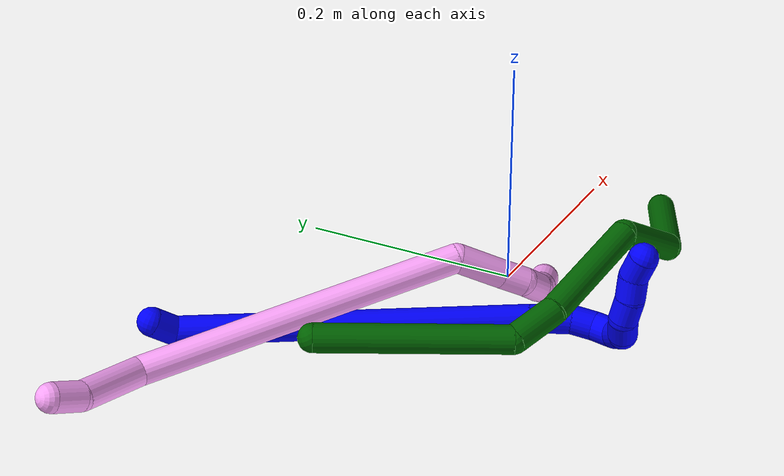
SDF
<sdf version="1.7">
 <world name="default">
  <model name="1">
   <static>0</static>
   <link name="1">
    <collision name="collision-cylinder-e_1_1_4">
     <pose>-0.000129 -0.011569 0.001819 1.41482 -0.011016 -0.009419</pose>
     <geometry><cylinder><radius>0.0125</radius><length>0.023423</length></cylinder></geometry>
     <surface>
      <friction><ode><mu>1.16</mu><mu2>1.16</mu2><slip1>0</slip1><slip2>0</slip2></ode></friction>
      <contact><ode><kp>1e+06</kp><kd>1</kd><max_vel>0</max_vel><min_depth>0.001</min_depth></ode></contact>
     </surface>
    </collision>
    <visual name="visual-cylinder-e_1_1_4">
     <pose>-0.000129 -0.011569 0.001819 1.41482 -0.011016 -0.009419</pose>
     <geometry><cylinder><radius>0.0125</radius><length>0.023423</length></cylinder></geometry>
     <material><ambient>0 0 1 1</ambient></material>
    </visual>
    <collision name="collision-cylinder-e_2_4_5">
     <pose>0.060893 -0.14702 -0.052724 1.99777 0.422276 0.642876</pose>
     <geometry><cylinder><radius>0.0125</radius><length>0.298415</length></cylinder></geometry>
     <surface>
      <friction><ode><mu>1.16</mu><mu2>1.16</mu2><slip1>0</slip1><slip2>0</slip2></ode></friction>
      <contact><ode><kp>1e+06</kp><kd>1</kd><max_vel>0</max_vel><min_depth>0.001</min_depth></ode></contact>
     </surface>
    </collision>
    <visual name="visual-cylinder-e_2_4_5">
     <pose>0.060893 -0.14702 -0.052724 1.99777 0.422276 0.642876</pose>
     <geometry><cylinder><radius>0.0125</radius><length>0.298415</length></cylinder></geometry>
     <material><ambient>0 0 1 1</ambient></material>
    </visual>
    <collision name="collision-cylinder-e_3_5_6">
     <pose>0.13036 -0.28511 -0.115248 1.98001 0.49282 0.731952</pose>
     <geometry><cylinder><radius>0.0125</radius><length>0.035156</length></cylinder></geometry>
     <surface>
      <friction><ode><mu>1.16</mu><mu2>1.16</mu2><slip1>0</slip1><slip2>0</slip2></ode></friction>
      <contact><ode><kp>1e+06</kp><kd>1</kd><max_vel>0</max_vel><min_depth>0.001</min_depth></ode></contact>
     </surface>
    </collision>
    <visual name="visual-cylinder-e_3_5_6">
     <pose>0.13036 -0.28511 -0.115248 1.98001 0.49282 0.731952</pose>
     <geometry><cylinder><radius>0.0125</radius><length>0.035156</length></cylinder></geometry>
     <material><ambient>0 0 1 1</ambient></material>
    </visual>
    <collision name="collision-cylinder-e_4_6_7">
     <pose>0.145175 -0.307591 -0.122555 1.7084 0.661197 0.750634</pose>
     <geometry><cylinder><radius>0.0125</radius><length>0.021166</length></cylinder></geometry>
     <surface>
      <friction><ode><mu>1.16</mu><mu2>1.16</mu2><slip1>0</slip1><slip2>0</slip2></ode></friction>
      <contact><ode><kp>1e+06</kp><kd>1</kd><max_vel>0</max_vel><min_depth>0.001</min_depth></ode></contact>
     </surface>
    </collision>
    <visual name="visual-cylinder-e_4_6_7">
     <pose>0.145175 -0.307591 -0.122555 1.7084 0.661197 0.750634</pose>
     <geometry><cylinder><radius>0.0125</radius><length>0.021166</length></cylinder></geometry>
     <material><ambient>0 0 1 1</ambient></material>
    </visual>
    <collision name="collision-cylinder-e_5_7_8">
     <pose>0.161134 -0.319378 -0.124914 1.90321 1.19645 1.52611</pose>
     <geometry><cylinder><radius>0.0125</radius><length>0.020328</length></cylinder></geometry>
     <surface>
      <friction><ode><mu>1.16</mu><mu2>1.16</mu2><slip1>0</slip1><slip2>0</slip2></ode></friction>
      <contact><ode><kp>1e+06</kp><kd>1</kd><max_vel>0</max_vel><min_depth>0.001</min_depth></ode></contact>
     </surface>
    </collision>
    <visual name="visual-cylinder-e_5_7_8">
     <pose>0.161134 -0.319378 -0.124914 1.90321 1.19645 1.52611</pose>
     <geometry><cylinder><radius>0.0125</radius><length>0.020328</length></cylinder></geometry>
     <material><ambient>0 0 1 1</ambient></material>
    </visual>
    <collision name="collision-cylinder-e_6_8_9">
     <pose>0.180108 -0.318916 -0.129129 -2.21772 1.08843 -1.76476</pose>
     <geometry><cylinder><radius>0.0125</radius><length>0.021479</length></cylinder></geometry>
     <surface>
      <friction><ode><mu>1.16</mu><mu2>1.16</mu2><slip1>0</slip1><slip2>0</slip2></ode></friction>
      <contact><ode><kp>1e+06</kp><kd>1</kd><max_vel>0</max_vel><min_depth>0.001</min_depth></ode></contact>
     </surface>
    </collision>
    <visual name="visual-cylinder-e_6_8_9">
     <pose>0.180108 -0.318916 -0.129129 -2.21772 1.08843 -1.76476</pose>
     <geometry><cylinder><radius>0.0125</radius><length>0.021479</length></cylinder></geometry>
     <material><ambient>0 0 1 1</ambient></material>
    </visual>
    <collision name="collision-cylinder-e_7_9_10">
     <pose>0.193299 -0.309052 -0.139332 -2.45613 0.376378 -0.980528</pose>
     <geometry><cylinder><radius>0.0125</radius><length>0.020004</length></cylinder></geometry>
     <surface>
      <friction><ode><mu>1.16</mu><mu2>1.16</mu2><slip1>0</slip1><slip2>0</slip2></ode></friction>
      <contact><ode><kp>1e+06</kp><kd>1</kd><max_vel>0</max_vel><min_depth>0.001</min_depth></ode></contact>
     </surface>
    </collision>
    <visual name="visual-cylinder-e_7_9_10">
     <pose>0.193299 -0.309052 -0.139332 -2.45613 0.376378 -0.980528</pose>
     <geometry><cylinder><radius>0.0125</radius><length>0.020004</length></cylinder></geometry>
     <material><ambient>0 0 1 1</ambient></material>
    </visual>
    <collision name="collision-cylinder-e_8_10_11">
     <pose>0.199154 -0.300576 -0.155949 -2.87331 0.219604 -1.36994</pose>
     <geometry><cylinder><radius>0.0125</radius><length>0.020011</length></cylinder></geometry>
     <surface>
      <friction><ode><mu>1.16</mu><mu2>1.16</mu2><slip1>0</slip1><slip2>0</slip2></ode></friction>
      <contact><ode><kp>1e+06</kp><kd>1</kd><max_vel>0</max_vel><min_depth>0.001</min_depth></ode></contact>
     </surface>
    </collision>
    <visual name="visual-cylinder-e_8_10_11">
     <pose>0.199154 -0.300576 -0.155949 -2.87331 0.219604 -1.36994</pose>
     <geometry><cylinder><radius>0.0125</radius><length>0.020011</length></cylinder></geometry>
     <material><ambient>0 0 1 1</ambient></material>
    </visual>
    <collision name="collision-cylinder-e_9_11_12">
     <pose>0.201592 -0.294851 -0.17486 -2.82259 0.025782 -0.159933</pose>
     <geometry><cylinder><radius>0.0125</radius><length>0.020006</length></cylinder></geometry>
     <surface>
      <friction><ode><mu>1.16</mu><mu2>1.16</mu2><slip1>0</slip1><slip2>0</slip2></ode></friction>
      <contact><ode><kp>1e+06</kp><kd>1</kd><max_vel>0</max_vel><min_depth>0.001</min_depth></ode></contact>
     </surface>
    </collision>
    <visual name="visual-cylinder-e_9_11_12">
     <pose>0.201592 -0.294851 -0.17486 -2.82259 0.025782 -0.159933</pose>
     <geometry><cylinder><radius>0.0125</radius><length>0.020006</length></cylinder></geometry>
     <material><ambient>0 0 1 1</ambient></material>
    </visual>
    <collision name="collision-cylinder-e_10_12_2">
     <pose>0.205515 -0.289786 -0.193463 -2.93287 0.375018 -2.1328</pose>
     <geometry><cylinder><radius>0.0125</radius><length>0.020012</length></cylinder></geometry>
     <surface>
      <friction><ode><mu>1.16</mu><mu2>1.16</mu2><slip1>0</slip1><slip2>0</slip2></ode></friction>
      <contact><ode><kp>1e+06</kp><kd>1</kd><max_vel>0</max_vel><min_depth>0.001</min_depth></ode></contact>
     </surface>
    </collision>
    <visual name="visual-cylinder-e_10_12_2">
     <pose>0.205515 -0.289786 -0.193463 -2.93287 0.375018 -2.1328</pose>
     <geometry><cylinder><radius>0.0125</radius><length>0.020012</length></cylinder></geometry>
     <material><ambient>0 0 1 1</ambient></material>
    </visual>
    <collision name="collision-sphere-2">
     <pose>0.20918 -0.287856 -0.202572 0 -0 0</pose>
     <geometry><sphere><radius>0.0125</radius></sphere></geometry>
     <surface>
      <friction><ode><mu>1.16</mu><mu2>1.16</mu2><slip1>0</slip1><slip2>0</slip2></ode></friction>
      <contact><ode><kp>1e+06</kp><kd>1</kd><max_vel>0</max_vel><min_depth>0.001</min_depth></ode></contact>
     </surface>
    </collision>
    <visual name="visual-sphere-2">
     <pose>0.20918 -0.287856 -0.202572 0 -0 0</pose>
     <geometry><sphere><radius>0.0125</radius></sphere></geometry>
     <material><ambient>0 0 1 1</ambient></material>
    </visual>
    <collision name="collision-sphere-12">
     <pose>0.20185 -0.291715 -0.184355 0 -0 0</pose>
     <geometry><sphere><radius>0.0125</radius></sphere></geometry>
     <surface>
      <friction><ode><mu>1.16</mu><mu2>1.16</mu2><slip1>0</slip1><slip2>0</slip2></ode></friction>
      <contact><ode><kp>1e+06</kp><kd>1</kd><max_vel>0</max_vel><min_depth>0.001</min_depth></ode></contact>
     </surface>
    </collision>
    <visual name="visual-sphere-12">
     <pose>0.20185 -0.291715 -0.184355 0 -0 0</pose>
     <geometry><sphere><radius>0.0125</radius></sphere></geometry>
     <material><ambient>0 0 1 1</ambient></material>
    </visual>
    <collision name="collision-sphere-11">
     <pose>0.201334 -0.297987 -0.165365 0 -0 0</pose>
     <geometry><sphere><radius>0.0125</radius></sphere></geometry>
     <surface>
      <friction><ode><mu>1.16</mu><mu2>1.16</mu2><slip1>0</slip1><slip2>0</slip2></ode></friction>
      <contact><ode><kp>1e+06</kp><kd>1</kd><max_vel>0</max_vel><min_depth>0.001</min_depth></ode></contact>
     </surface>
    </collision>
    <visual name="visual-sphere-11">
     <pose>0.201334 -0.297987 -0.165365 0 -0 0</pose>
     <geometry><sphere><radius>0.0125</radius></sphere></geometry>
     <material><ambient>0 0 1 1</ambient></material>
    </visual>
    <collision name="collision-sphere-10">
     <pose>0.196975 -0.303164 -0.146533 0 -0 0</pose>
     <geometry><sphere><radius>0.0125</radius></sphere></geometry>
     <surface>
      <friction><ode><mu>1.16</mu><mu2>1.16</mu2><slip1>0</slip1><slip2>0</slip2></ode></friction>
      <contact><ode><kp>1e+06</kp><kd>1</kd><max_vel>0</max_vel><min_depth>0.001</min_depth></ode></contact>
     </surface>
    </collision>
    <visual name="visual-sphere-10">
     <pose>0.196975 -0.303164 -0.146533 0 -0 0</pose>
     <geometry><sphere><radius>0.0125</radius></sphere></geometry>
     <material><ambient>0 0 1 1</ambient></material>
    </visual>
    <collision name="collision-sphere-9">
     <pose>0.189622 -0.314941 -0.132132 0 -0 0</pose>
     <geometry><sphere><radius>0.0125</radius></sphere></geometry>
     <surface>
      <friction><ode><mu>1.16</mu><mu2>1.16</mu2><slip1>0</slip1><slip2>0</slip2></ode></friction>
      <contact><ode><kp>1e+06</kp><kd>1</kd><max_vel>0</max_vel><min_depth>0.001</min_depth></ode></contact>
     </surface>
    </collision>
    <visual name="visual-sphere-9">
     <pose>0.189622 -0.314941 -0.132132 0 -0 0</pose>
     <geometry><sphere><radius>0.0125</radius></sphere></geometry>
     <material><ambient>0 0 1 1</ambient></material>
    </visual>
    <collision name="collision-sphere-4">
     <pose>-0.000258 -0.023137 0.003639 0 -0 0</pose>
     <geometry><sphere><radius>0.0125</radius></sphere></geometry>
     <surface>
      <friction><ode><mu>1.16</mu><mu2>1.16</mu2><slip1>0</slip1><slip2>0</slip2></ode></friction>
      <contact><ode><kp>1e+06</kp><kd>1</kd><max_vel>0</max_vel><min_depth>0.001</min_depth></ode></contact>
     </surface>
    </collision>
    <visual name="visual-sphere-4">
     <pose>-0.000258 -0.023137 0.003639 0 -0 0</pose>
     <geometry><sphere><radius>0.0125</radius></sphere></geometry>
     <material><ambient>0 0 1 1</ambient></material>
    </visual>
    <collision name="collision-sphere-1">
     <geometry><sphere><radius>0.0125</radius></sphere></geometry>
     <surface>
      <friction><ode><mu>1.16</mu><mu2>1.16</mu2><slip1>0</slip1><slip2>0</slip2></ode></friction>
      <contact><ode><kp>1e+06</kp><kd>1</kd><max_vel>0</max_vel><min_depth>0.001</min_depth></ode></contact>
     </surface>
    </collision>
    <visual name="visual-sphere-1">
     <geometry><sphere><radius>0.0125</radius></sphere></geometry>
     <material><ambient>0 0 1 1</ambient></material>
    </visual>
    <collision name="collision-sphere-8">
     <pose>0.170594 -0.322891 -0.126126 0 -0 0</pose>
     <geometry><sphere><radius>0.0125</radius></sphere></geometry>
     <surface>
      <friction><ode><mu>1.16</mu><mu2>1.16</mu2><slip1>0</slip1><slip2>0</slip2></ode></friction>
      <contact><ode><kp>1e+06</kp><kd>1</kd><max_vel>0</max_vel><min_depth>0.001</min_depth></ode></contact>
     </surface>
    </collision>
    <visual name="visual-sphere-8">
     <pose>0.170594 -0.322891 -0.126126 0 -0 0</pose>
     <geometry><sphere><radius>0.0125</radius></sphere></geometry>
     <material><ambient>0 0 1 1</ambient></material>
    </visual>
    <collision name="collision-sphere-5">
     <pose>0.122044 -0.270902 -0.109086 0 -0 0</pose>
     <geometry><sphere><radius>0.0125</radius></sphere></geometry>
     <surface>
      <friction><ode><mu>1.16</mu><mu2>1.16</mu2><slip1>0</slip1><slip2>0</slip2></ode></friction>
      <contact><ode><kp>1e+06</kp><kd>1</kd><max_vel>0</max_vel><min_depth>0.001</min_depth></ode></contact>
     </surface>
    </collision>
    <visual name="visual-sphere-5">
     <pose>0.122044 -0.270902 -0.109086 0 -0 0</pose>
     <geometry><sphere><radius>0.0125</radius></sphere></geometry>
     <material><ambient>0 0 1 1</ambient></material>
    </visual>
    <collision name="collision-sphere-6">
     <pose>0.138677 -0.299317 -0.121409 0 -0 0</pose>
     <geometry><sphere><radius>0.0125</radius></sphere></geometry>
     <surface>
      <friction><ode><mu>1.16</mu><mu2>1.16</mu2><slip1>0</slip1><slip2>0</slip2></ode></friction>
      <contact><ode><kp>1e+06</kp><kd>1</kd><max_vel>0</max_vel><min_depth>0.001</min_depth></ode></contact>
     </surface>
    </collision>
    <visual name="visual-sphere-6">
     <pose>0.138677 -0.299317 -0.121409 0 -0 0</pose>
     <geometry><sphere><radius>0.0125</radius></sphere></geometry>
     <material><ambient>0 0 1 1</ambient></material>
    </visual>
    <collision name="collision-sphere-7">
     <pose>0.151674 -0.315865 -0.123701 0 -0 0</pose>
     <geometry><sphere><radius>0.0125</radius></sphere></geometry>
     <surface>
      <friction><ode><mu>1.16</mu><mu2>1.16</mu2><slip1>0</slip1><slip2>0</slip2></ode></friction>
      <contact><ode><kp>1e+06</kp><kd>1</kd><max_vel>0</max_vel><min_depth>0.001</min_depth></ode></contact>
     </surface>
    </collision>
    <visual name="visual-sphere-7">
     <pose>0.151674 -0.315865 -0.123701 0 -0 0</pose>
     <geometry><sphere><radius>0.0125</radius></sphere></geometry>
     <material><ambient>0 0 1 1</ambient></material>
    </visual>
    <inertial>
     <pose>0.097932 -0.19583 -0.081854 0 -0 0</pose>
     <mass>0.5</mass>
     <inertia>
      <ixx>0.002866</ixx>
      <ixy>0</ixy>
      <ixz>0</ixz>
      <iyy>0.000957</iyy>
      <iyz>0</iyz>
      <izz>0.000918</izz>
     </inertia>
    </inertial>
   </link>
   <pose>-0.248468 0.211805 0.024817 2.69146 -0.083425 -2.18895</pose>
  </model>
  <model name="4">
   <static>0</static>
   <link name="4">
    <collision name="collision-cylinder-e_1_1_4">
     <pose>-1.5e-05 1.9e-05 -0.013529 -3.14015 -0.001128 1.32936</pose>
     <geometry><cylinder><radius>0.0125</radius><length>0.027058</length></cylinder></geometry>
     <surface>
      <friction><ode><mu>1.16</mu><mu2>1.16</mu2><slip1>0</slip1><slip2>0</slip2></ode></friction>
      <contact><ode><kp>1e+06</kp><kd>1</kd><max_vel>0</max_vel><min_depth>0.001</min_depth></ode></contact>
     </surface>
    </collision>
    <visual name="visual-cylinder-e_1_1_4">
     <pose>-1.5e-05 1.9e-05 -0.013529 -3.14015 -0.001128 1.32936</pose>
     <geometry><cylinder><radius>0.0125</radius><length>0.027058</length></cylinder></geometry>
     <material><ambient>1 0.65098 0.996078 1</ambient></material>
    </visual>
    <collision name="collision-cylinder-e_2_4_5">
     <pose>0.006818 0.007464 -0.057365 -2.90132 0.21605 -1.46382</pose>
     <geometry><cylinder><radius>0.0125</radius><length>0.063893</length></cylinder></geometry>
     <surface>
      <friction><ode><mu>1.16</mu><mu2>1.16</mu2><slip1>0</slip1><slip2>0</slip2></ode></friction>
      <contact><ode><kp>1e+06</kp><kd>1</kd><max_vel>0</max_vel><min_depth>0.001</min_depth></ode></contact>
     </surface>
    </collision>
    <visual name="visual-cylinder-e_2_4_5">
     <pose>0.006818 0.007464 -0.057365 -2.90132 0.21605 -1.46382</pose>
     <geometry><cylinder><radius>0.0125</radius><length>0.063893</length></cylinder></geometry>
     <material><ambient>1 0.65098 0.996078 1</ambient></material>
    </visual>
    <collision name="collision-cylinder-e_3_5_6">
     <pose>0.072392 -0.040458 -0.201871 2.69028 0.433413 1.529</pose>
     <geometry><cylinder><radius>0.0125</radius><length>0.279666</length></cylinder></geometry>
     <surface>
      <friction><ode><mu>1.16</mu><mu2>1.16</mu2><slip1>0</slip1><slip2>0</slip2></ode></friction>
      <contact><ode><kp>1e+06</kp><kd>1</kd><max_vel>0</max_vel><min_depth>0.001</min_depth></ode></contact>
     </surface>
    </collision>
    <visual name="visual-cylinder-e_3_5_6">
     <pose>0.072392 -0.040458 -0.201871 2.69028 0.433413 1.529</pose>
     <geometry><cylinder><radius>0.0125</radius><length>0.279666</length></cylinder></geometry>
     <material><ambient>1 0.65098 0.996078 1</ambient></material>
    </visual>
    <collision name="collision-cylinder-e_4_6_7">
     <pose>0.125836 -0.103338 -0.33631 2.78536 -0.239859 -1.17979</pose>
     <geometry><cylinder><radius>0.0125</radius><length>0.044467</length></cylinder></geometry>
     <surface>
      <friction><ode><mu>1.16</mu><mu2>1.16</mu2><slip1>0</slip1><slip2>0</slip2></ode></friction>
      <contact><ode><kp>1e+06</kp><kd>1</kd><max_vel>0</max_vel><min_depth>0.001</min_depth></ode></contact>
     </surface>
    </collision>
    <visual name="visual-cylinder-e_4_6_7">
     <pose>0.125836 -0.103338 -0.33631 2.78536 -0.239859 -1.17979</pose>
     <geometry><cylinder><radius>0.0125</radius><length>0.044467</length></cylinder></geometry>
     <material><ambient>1 0.65098 0.996078 1</ambient></material>
    </visual>
    <collision name="collision-cylinder-e_5_7_8">
     <pose>0.118095 -0.115354 -0.366515 2.71872 -0.221411 -0.955703</pose>
     <geometry><cylinder><radius>0.0125</radius><length>0.0224</length></cylinder></geometry>
     <surface>
      <friction><ode><mu>1.16</mu><mu2>1.16</mu2><slip1>0</slip1><slip2>0</slip2></ode></friction>
      <contact><ode><kp>1e+06</kp><kd>1</kd><max_vel>0</max_vel><min_depth>0.001</min_depth></ode></contact>
     </surface>
    </collision>
    <visual name="visual-cylinder-e_5_7_8">
     <pose>0.118095 -0.115354 -0.366515 2.71872 -0.221411 -0.955703</pose>
     <geometry><cylinder><radius>0.0125</radius><length>0.0224</length></cylinder></geometry>
     <material><ambient>1 0.65098 0.996078 1</ambient></material>
    </visual>
    <collision name="collision-cylinder-e_6_8_9">
     <pose>0.112655 -0.118459 -0.387022 -3.01151 -0.273208 2.25663</pose>
     <geometry><cylinder><radius>0.0125</radius><length>0.022086</length></cylinder></geometry>
     <surface>
      <friction><ode><mu>1.16</mu><mu2>1.16</mu2><slip1>0</slip1><slip2>0</slip2></ode></friction>
      <contact><ode><kp>1e+06</kp><kd>1</kd><max_vel>0</max_vel><min_depth>0.001</min_depth></ode></contact>
     </surface>
    </collision>
    <visual name="visual-cylinder-e_6_8_9">
     <pose>0.112655 -0.118459 -0.387022 -3.01151 -0.273208 2.25663</pose>
     <geometry><cylinder><radius>0.0125</radius><length>0.022086</length></cylinder></geometry>
     <material><ambient>1 0.65098 0.996078 1</ambient></material>
    </visual>
    <collision name="collision-cylinder-e_7_9_10">
     <pose>0.109076 -0.111084 -0.405621 -2.50167 -0.059651 0.179596</pose>
     <geometry><cylinder><radius>0.0125</radius><length>0.020119</length></cylinder></geometry>
     <surface>
      <friction><ode><mu>1.16</mu><mu2>1.16</mu2><slip1>0</slip1><slip2>0</slip2></ode></friction>
      <contact><ode><kp>1e+06</kp><kd>1</kd><max_vel>0</max_vel><min_depth>0.001</min_depth></ode></contact>
     </surface>
    </collision>
    <visual name="visual-cylinder-e_7_9_10">
     <pose>0.109076 -0.111084 -0.405621 -2.50167 -0.059651 0.179596</pose>
     <geometry><cylinder><radius>0.0125</radius><length>0.020119</length></cylinder></geometry>
     <material><ambient>1 0.65098 0.996078 1</ambient></material>
    </visual>
    <collision name="collision-cylinder-e_8_10_2">
     <pose>0.110647 -0.098897 -0.421428 -2.4678 0.215377 -0.598762</pose>
     <geometry><cylinder><radius>0.0125</radius><length>0.020311</length></cylinder></geometry>
     <surface>
      <friction><ode><mu>1.16</mu><mu2>1.16</mu2><slip1>0</slip1><slip2>0</slip2></ode></friction>
      <contact><ode><kp>1e+06</kp><kd>1</kd><max_vel>0</max_vel><min_depth>0.001</min_depth></ode></contact>
     </surface>
    </collision>
    <visual name="visual-cylinder-e_8_10_2">
     <pose>0.110647 -0.098897 -0.421428 -2.4678 0.215377 -0.598762</pose>
     <geometry><cylinder><radius>0.0125</radius><length>0.020311</length></cylinder></geometry>
     <material><ambient>1 0.65098 0.996078 1</ambient></material>
    </visual>
    <collision name="collision-sphere-2">
     <pose>0.112817 -0.092707 -0.429181 0 -0 0</pose>
     <geometry><sphere><radius>0.0125</radius></sphere></geometry>
     <surface>
      <friction><ode><mu>1.16</mu><mu2>1.16</mu2><slip1>0</slip1><slip2>0</slip2></ode></friction>
      <contact><ode><kp>1e+06</kp><kd>1</kd><max_vel>0</max_vel><min_depth>0.001</min_depth></ode></contact>
     </surface>
    </collision>
    <visual name="visual-sphere-2">
     <pose>0.112817 -0.092707 -0.429181 0 -0 0</pose>
     <geometry><sphere><radius>0.0125</radius></sphere></geometry>
     <material><ambient>1 0.65098 0.996078 1</ambient></material>
    </visual>
    <collision name="collision-sphere-10">
     <pose>0.108476 -0.105087 -0.413675 0 -0 0</pose>
     <geometry><sphere><radius>0.0125</radius></sphere></geometry>
     <surface>
      <friction><ode><mu>1.16</mu><mu2>1.16</mu2><slip1>0</slip1><slip2>0</slip2></ode></friction>
      <contact><ode><kp>1e+06</kp><kd>1</kd><max_vel>0</max_vel><min_depth>0.001</min_depth></ode></contact>
     </surface>
    </collision>
    <visual name="visual-sphere-10">
     <pose>0.108476 -0.105087 -0.413675 0 -0 0</pose>
     <geometry><sphere><radius>0.0125</radius></sphere></geometry>
     <material><ambient>1 0.65098 0.996078 1</ambient></material>
    </visual>
    <collision name="collision-sphere-9">
     <pose>0.109676 -0.11708 -0.397566 0 -0 0</pose>
     <geometry><sphere><radius>0.0125</radius></sphere></geometry>
     <surface>
      <friction><ode><mu>1.16</mu><mu2>1.16</mu2><slip1>0</slip1><slip2>0</slip2></ode></friction>
      <contact><ode><kp>1e+06</kp><kd>1</kd><max_vel>0</max_vel><min_depth>0.001</min_depth></ode></contact>
     </surface>
    </collision>
    <visual name="visual-sphere-9">
     <pose>0.109676 -0.11708 -0.397566 0 -0 0</pose>
     <geometry><sphere><radius>0.0125</radius></sphere></geometry>
     <material><ambient>1 0.65098 0.996078 1</ambient></material>
    </visual>
    <collision name="collision-sphere-4">
     <pose>-3.1e-05 3.9e-05 -0.027058 0 -0 0</pose>
     <geometry><sphere><radius>0.0125</radius></sphere></geometry>
     <surface>
      <friction><ode><mu>1.16</mu><mu2>1.16</mu2><slip1>0</slip1><slip2>0</slip2></ode></friction>
      <contact><ode><kp>1e+06</kp><kd>1</kd><max_vel>0</max_vel><min_depth>0.001</min_depth></ode></contact>
     </surface>
    </collision>
    <visual name="visual-sphere-4">
     <pose>-3.1e-05 3.9e-05 -0.027058 0 -0 0</pose>
     <geometry><sphere><radius>0.0125</radius></sphere></geometry>
     <material><ambient>1 0.65098 0.996078 1</ambient></material>
    </visual>
    <collision name="collision-sphere-1">
     <geometry><sphere><radius>0.0125</radius></sphere></geometry>
     <surface>
      <friction><ode><mu>1.16</mu><mu2>1.16</mu2><slip1>0</slip1><slip2>0</slip2></ode></friction>
      <contact><ode><kp>1e+06</kp><kd>1</kd><max_vel>0</max_vel><min_depth>0.001</min_depth></ode></contact>
     </surface>
    </collision>
    <visual name="visual-sphere-1">
     <geometry><sphere><radius>0.0125</radius></sphere></geometry>
     <material><ambient>1 0.65098 0.996078 1</ambient></material>
    </visual>
    <collision name="collision-sphere-8">
     <pose>0.115635 -0.119838 -0.376479 0 -0 0</pose>
     <geometry><sphere><radius>0.0125</radius></sphere></geometry>
     <surface>
      <friction><ode><mu>1.16</mu><mu2>1.16</mu2><slip1>0</slip1><slip2>0</slip2></ode></friction>
      <contact><ode><kp>1e+06</kp><kd>1</kd><max_vel>0</max_vel><min_depth>0.001</min_depth></ode></contact>
     </surface>
    </collision>
    <visual name="visual-sphere-8">
     <pose>0.115635 -0.119838 -0.376479 0 -0 0</pose>
     <geometry><sphere><radius>0.0125</radius></sphere></geometry>
     <material><ambient>1 0.65098 0.996078 1</ambient></material>
    </visual>
    <collision name="collision-sphere-5">
     <pose>0.013666 0.01489 -0.087673 0 -0 0</pose>
     <geometry><sphere><radius>0.0125</radius></sphere></geometry>
     <surface>
      <friction><ode><mu>1.16</mu><mu2>1.16</mu2><slip1>0</slip1><slip2>0</slip2></ode></friction>
      <contact><ode><kp>1e+06</kp><kd>1</kd><max_vel>0</max_vel><min_depth>0.001</min_depth></ode></contact>
     </surface>
    </collision>
    <visual name="visual-sphere-5">
     <pose>0.013666 0.01489 -0.087673 0 -0 0</pose>
     <geometry><sphere><radius>0.0125</radius></sphere></geometry>
     <material><ambient>1 0.65098 0.996078 1</ambient></material>
    </visual>
    <collision name="collision-sphere-6">
     <pose>0.131118 -0.095807 -0.316068 0 -0 0</pose>
     <geometry><sphere><radius>0.0125</radius></sphere></geometry>
     <surface>
      <friction><ode><mu>1.16</mu><mu2>1.16</mu2><slip1>0</slip1><slip2>0</slip2></ode></friction>
      <contact><ode><kp>1e+06</kp><kd>1</kd><max_vel>0</max_vel><min_depth>0.001</min_depth></ode></contact>
     </surface>
    </collision>
    <visual name="visual-sphere-6">
     <pose>0.131118 -0.095807 -0.316068 0 -0 0</pose>
     <geometry><sphere><radius>0.0125</radius></sphere></geometry>
     <material><ambient>1 0.65098 0.996078 1</ambient></material>
    </visual>
    <collision name="collision-sphere-7">
     <pose>0.120554 -0.11087 -0.356551 0 -0 0</pose>
     <geometry><sphere><radius>0.0125</radius></sphere></geometry>
     <surface>
      <friction><ode><mu>1.16</mu><mu2>1.16</mu2><slip1>0</slip1><slip2>0</slip2></ode></friction>
      <contact><ode><kp>1e+06</kp><kd>1</kd><max_vel>0</max_vel><min_depth>0.001</min_depth></ode></contact>
     </surface>
    </collision>
    <visual name="visual-sphere-7">
     <pose>0.120554 -0.11087 -0.356551 0 -0 0</pose>
     <geometry><sphere><radius>0.0125</radius></sphere></geometry>
     <material><ambient>1 0.65098 0.996078 1</ambient></material>
    </visual>
    <inertial>
     <pose>0.071703 -0.049753 -0.217841 0 -0 0</pose>
     <mass>0.5</mass>
     <inertia>
      <ixx>0.00172</ixx>
      <ixy>0</ixy>
      <ixz>0</ixz>
      <iyy>0.001886</iyy>
      <iyz>0</iyz>
      <izz>-8.4e-05</izz>
     </inertia>
    </inertial>
   </link>
   <pose>-0.386859 0.208119 0.030374 -0.480627 -1.19739 0.094309</pose>
  </model>
  <model name="6">
   <static>0</static>
   <link name="6">
    <collision name="collision-cylinder-e_1_1_4">
     <pose>0.0395 -0.058467 -0.042877 2.20356 0.498835 0.931573</pose>
     <geometry><cylinder><radius>0.0125</radius><length>0.165132</length></cylinder></geometry>
     <surface>
      <friction><ode><mu>1.16</mu><mu2>1.16</mu2><slip1>0</slip1><slip2>0</slip2></ode></friction>
      <contact><ode><kp>1e+06</kp><kd>1</kd><max_vel>0</max_vel><min_depth>0.001</min_depth></ode></contact>
     </surface>
    </collision>
    <visual name="visual-cylinder-e_1_1_4">
     <pose>0.0395 -0.058467 -0.042877 2.20356 0.498835 0.931573</pose>
     <geometry><cylinder><radius>0.0125</radius><length>0.165132</length></cylinder></geometry>
     <material><ambient>0 0.392157 0.003922 1</ambient></material>
    </visual>
    <collision name="collision-cylinder-e_2_4_5">
     <pose>0.100039 -0.125445 -0.088166 1.84689 1.17283 1.44192</pose>
     <geometry><cylinder><radius>0.0125</radius><length>0.045647</length></cylinder></geometry>
     <surface>
      <friction><ode><mu>1.16</mu><mu2>1.16</mu2><slip1>0</slip1><slip2>0</slip2></ode></friction>
      <contact><ode><kp>1e+06</kp><kd>1</kd><max_vel>0</max_vel><min_depth>0.001</min_depth></ode></contact>
     </surface>
    </collision>
    <visual name="visual-cylinder-e_2_4_5">
     <pose>0.100039 -0.125445 -0.088166 1.84689 1.17283 1.44192</pose>
     <geometry><cylinder><radius>0.0125</radius><length>0.045647</length></cylinder></geometry>
     <material><ambient>0 0.392157 0.003922 1</ambient></material>
    </visual>
    <collision name="collision-cylinder-e_3_5_6">
     <pose>0.175378 -0.144772 -0.090952 1.60542 1.37405 1.40813</pose>
     <geometry><cylinder><radius>0.0125</radius><length>0.110734</length></cylinder></geometry>
     <surface>
      <friction><ode><mu>1.16</mu><mu2>1.16</mu2><slip1>0</slip1><slip2>0</slip2></ode></friction>
      <contact><ode><kp>1e+06</kp><kd>1</kd><max_vel>0</max_vel><min_depth>0.001</min_depth></ode></contact>
     </surface>
    </collision>
    <visual name="visual-cylinder-e_3_5_6">
     <pose>0.175378 -0.144772 -0.090952 1.60542 1.37405 1.40813</pose>
     <geometry><cylinder><radius>0.0125</radius><length>0.110734</length></cylinder></geometry>
     <material><ambient>0 0.392157 0.003922 1</ambient></material>
    </visual>
    <collision name="collision-cylinder-e_4_6_7">
     <pose>0.258333 -0.151909 -0.117319 -3.00097 0.829165 -2.82422</pose>
     <geometry><cylinder><radius>0.0125</radius><length>0.077725</length></cylinder></geometry>
     <surface>
      <friction><ode><mu>1.16</mu><mu2>1.16</mu2><slip1>0</slip1><slip2>0</slip2></ode></friction>
      <contact><ode><kp>1e+06</kp><kd>1</kd><max_vel>0</max_vel><min_depth>0.001</min_depth></ode></contact>
     </surface>
    </collision>
    <visual name="visual-cylinder-e_4_6_7">
     <pose>0.258333 -0.151909 -0.117319 -3.00097 0.829165 -2.82422</pose>
     <geometry><cylinder><radius>0.0125</radius><length>0.077725</length></cylinder></geometry>
     <material><ambient>0 0.392157 0.003922 1</ambient></material>
    </visual>
    <collision name="collision-cylinder-e_5_7_2">
     <pose>0.331414 -0.124534 -0.145091 -1.64577 1.07962 -1.14693</pose>
     <geometry><cylinder><radius>0.0125</radius><length>0.100762</length></cylinder></geometry>
     <surface>
      <friction><ode><mu>1.16</mu><mu2>1.16</mu2><slip1>0</slip1><slip2>0</slip2></ode></friction>
      <contact><ode><kp>1e+06</kp><kd>1</kd><max_vel>0</max_vel><min_depth>0.001</min_depth></ode></contact>
     </surface>
    </collision>
    <visual name="visual-cylinder-e_5_7_2">
     <pose>0.331414 -0.124534 -0.145091 -1.64577 1.07962 -1.14693</pose>
     <geometry><cylinder><radius>0.0125</radius><length>0.100762</length></cylinder></geometry>
     <material><ambient>0 0.392157 0.003922 1</ambient></material>
    </visual>
    <collision name="collision-sphere-2">
     <pose>0.375839 -0.100838 -0.146871 0 -0 0</pose>
     <geometry><sphere><radius>0.0125</radius></sphere></geometry>
     <surface>
      <friction><ode><mu>1.16</mu><mu2>1.16</mu2><slip1>0</slip1><slip2>0</slip2></ode></friction>
      <contact><ode><kp>1e+06</kp><kd>1</kd><max_vel>0</max_vel><min_depth>0.001</min_depth></ode></contact>
     </surface>
    </collision>
    <visual name="visual-sphere-2">
     <pose>0.375839 -0.100838 -0.146871 0 -0 0</pose>
     <geometry><sphere><radius>0.0125</radius></sphere></geometry>
     <material><ambient>0 0.392157 0.003922 1</ambient></material>
    </visual>
    <collision name="collision-sphere-7">
     <pose>0.286989 -0.148229 -0.143311 0 -0 0</pose>
     <geometry><sphere><radius>0.0125</radius></sphere></geometry>
     <surface>
      <friction><ode><mu>1.16</mu><mu2>1.16</mu2><slip1>0</slip1><slip2>0</slip2></ode></friction>
      <contact><ode><kp>1e+06</kp><kd>1</kd><max_vel>0</max_vel><min_depth>0.001</min_depth></ode></contact>
     </surface>
    </collision>
    <visual name="visual-sphere-7">
     <pose>0.286989 -0.148229 -0.143311 0 -0 0</pose>
     <geometry><sphere><radius>0.0125</radius></sphere></geometry>
     <material><ambient>0 0.392157 0.003922 1</ambient></material>
    </visual>
    <collision name="collision-sphere-6">
     <pose>0.229677 -0.155588 -0.091326 0 -0 0</pose>
     <geometry><sphere><radius>0.0125</radius></sphere></geometry>
     <surface>
      <friction><ode><mu>1.16</mu><mu2>1.16</mu2><slip1>0</slip1><slip2>0</slip2></ode></friction>
      <contact><ode><kp>1e+06</kp><kd>1</kd><max_vel>0</max_vel><min_depth>0.001</min_depth></ode></contact>
     </surface>
    </collision>
    <visual name="visual-sphere-6">
     <pose>0.229677 -0.155588 -0.091326 0 -0 0</pose>
     <geometry><sphere><radius>0.0125</radius></sphere></geometry>
     <material><ambient>0 0.392157 0.003922 1</ambient></material>
    </visual>
    <collision name="collision-sphere-5">
     <pose>0.12108 -0.133955 -0.090577 0 -0 0</pose>
     <geometry><sphere><radius>0.0125</radius></sphere></geometry>
     <surface>
      <friction><ode><mu>1.16</mu><mu2>1.16</mu2><slip1>0</slip1><slip2>0</slip2></ode></friction>
      <contact><ode><kp>1e+06</kp><kd>1</kd><max_vel>0</max_vel><min_depth>0.001</min_depth></ode></contact>
     </surface>
    </collision>
    <visual name="visual-sphere-5">
     <pose>0.12108 -0.133955 -0.090577 0 -0 0</pose>
     <geometry><sphere><radius>0.0125</radius></sphere></geometry>
     <material><ambient>0 0.392157 0.003922 1</ambient></material>
    </visual>
    <collision name="collision-sphere-1">
     <geometry><sphere><radius>0.0125</radius></sphere></geometry>
     <surface>
      <friction><ode><mu>1.16</mu><mu2>1.16</mu2><slip1>0</slip1><slip2>0</slip2></ode></friction>
      <contact><ode><kp>1e+06</kp><kd>1</kd><max_vel>0</max_vel><min_depth>0.001</min_depth></ode></contact>
     </surface>
    </collision>
    <visual name="visual-sphere-1">
     <geometry><sphere><radius>0.0125</radius></sphere></geometry>
     <material><ambient>0 0.392157 0.003922 1</ambient></material>
    </visual>
    <collision name="collision-sphere-4">
     <pose>0.078999 -0.116935 -0.085755 0 -0 0</pose>
     <geometry><sphere><radius>0.0125</radius></sphere></geometry>
     <surface>
      <friction><ode><mu>1.16</mu><mu2>1.16</mu2><slip1>0</slip1><slip2>0</slip2></ode></friction>
      <contact><ode><kp>1e+06</kp><kd>1</kd><max_vel>0</max_vel><min_depth>0.001</min_depth></ode></contact>
     </surface>
    </collision>
    <visual name="visual-sphere-4">
     <pose>0.078999 -0.116935 -0.085755 0 -0 0</pose>
     <geometry><sphere><radius>0.0125</radius></sphere></geometry>
     <material><ambient>0 0.392157 0.003922 1</ambient></material>
    </visual>
    <inertial>
     <pose>0.167965 -0.111535 -0.089829 0 -0 0</pose>
     <mass>0.5</mass>
     <inertia>
      <ixx>0.000472</ixx>
      <ixy>0</ixy>
      <ixz>0</ixz>
      <iyy>0.000455</iyy>
      <iyz>0</iyz>
      <izz>-0.000177</izz>
     </inertia>
    </inertial>
   </link>
   <pose>-0.213527 0.077302 0.028544 -0.507893 -0.165256 0.005614</pose>
  </model>
 </world>
</sdf>
